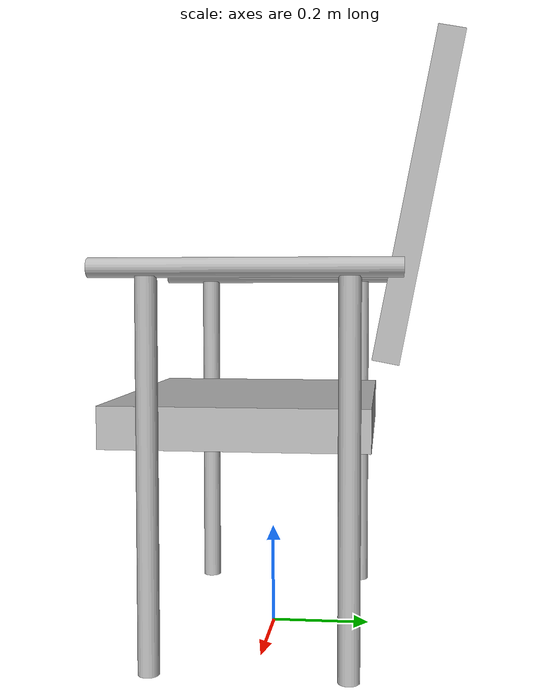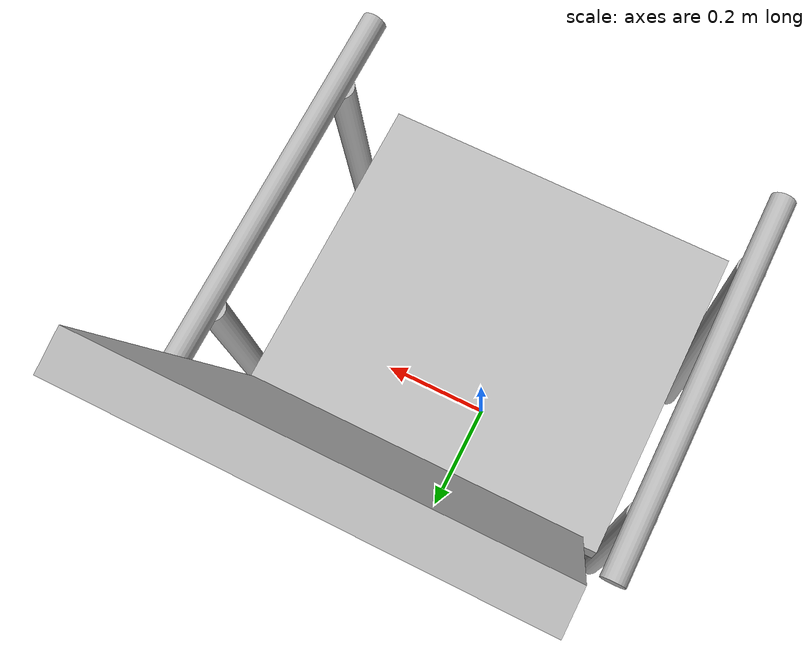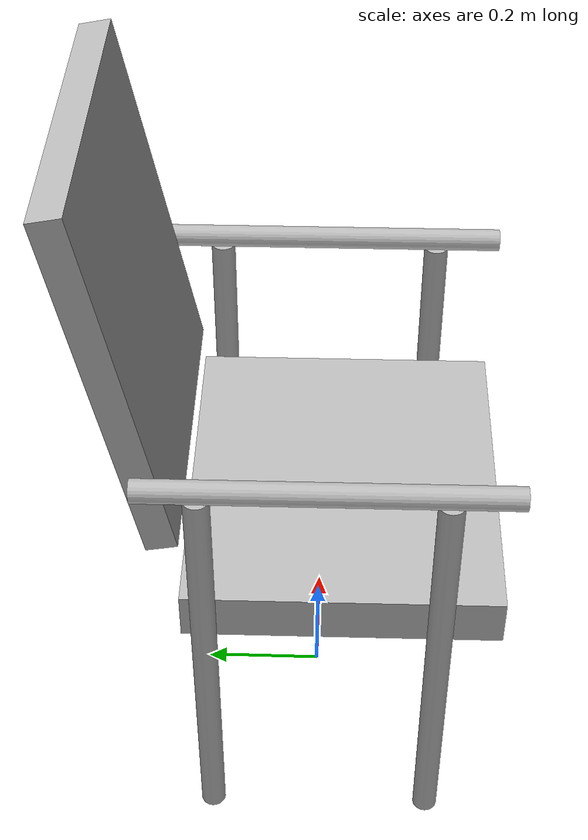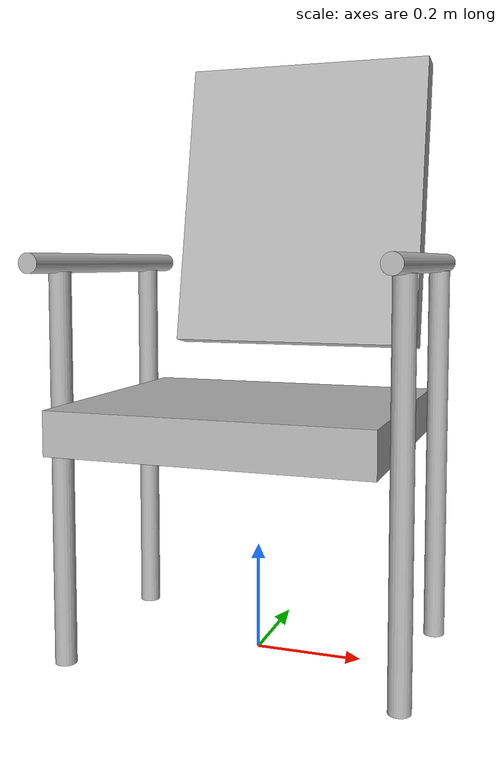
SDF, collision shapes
<?xml version='1.0' encoding='utf-8'?>
<sdf version="1.6">
  <model name="VisitorChair">
   <static>true</static>
    <link name="body">
      <pose>0 0 0 0 0 0</pose>

      <collision name="seat_collision">
        <pose>0 -0.04 0.445 0 0 0</pose>
        <geometry><box><size>0.58 0.50 0.08</size></box></geometry>
      </collision>
      <collision name="back_collision">
        <pose>0 0.29 0.86 -0.19 0 0</pose>
        <geometry><box><size>0.52 0.05 0.60</size></box></geometry>
      </collision>
      <collision name="arm_left_collision">
        <pose>-0.310 -0.015 0.735 1.5708 0 0</pose>
        <geometry><cylinder><radius>0.018</radius><length>0.56</length></cylinder></geometry>
      </collision>
      <collision name="arm_right_collision">
        <pose>0.310 -0.015 0.735 1.5708 0 0</pose>
        <geometry><cylinder><radius>0.018</radius><length>0.56</length></cylinder></geometry>
      </collision>
      <collision name="leg_fl_collision">
        <pose>0.310 -0.190 0.36 0 0 0</pose>
        <geometry><cylinder><radius>0.02</radius><length>0.72</length></cylinder></geometry>
      </collision>
      <collision name="leg_fr_collision">
        <pose>-0.310 -0.190 0.36 0 0 0</pose>
        <geometry><cylinder><radius>0.02</radius><length>0.72</length></cylinder></geometry>
      </collision>
      <collision name="leg_bl_collision">
        <pose>0.310 0.172 0.36 0 0 0</pose>
        <geometry><cylinder><radius>0.02</radius><length>0.72</length></cylinder></geometry>
      </collision>
      <collision name="leg_br_collision">
        <pose>-0.310 0.172 0.36 0 0 0</pose>
        <geometry><cylinder><radius>0.02</radius><length>0.72</length></cylinder></geometry>
      </collision>

      <visual name="visual">
        <geometry>
          <mesh>
            <uri>model://VisitorChair/meshes/VisitorChair.obj</uri>
          </mesh>
        </geometry>
      </visual>

    </link>
  </model>
</sdf>
